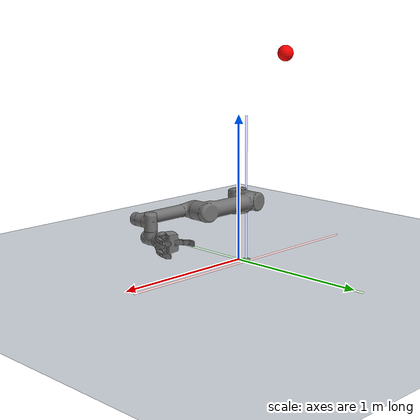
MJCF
<!--Link  MuJoCo modeling: http://www.mujoco.org/book/modeling.html-->

<mujoco model="ur5gripper">
    <compiler angle="radian"
              inertiafromgeom="true"
              texturedir="textures/"
              meshdir="mesh/visual/"/>
    <option timestep="2e-3"
            iterations="10"
            tolerance="1e-10"
            impratio="20"
            gravity="0 0 -1.81" />
    <size njmax="600" nconmax="150" nstack="300000"/>

    <default>
        <site rgba="0.8 0.6 0.7 0.3" type="ellipsoid" group="3"/>
        <geom contype='1' conaffinity='1' condim='4'  margin="1e-3" solref=".01 1" solimp=".99 .99 .01" />
        <joint armature="0.01" damping=".1"/>
        <default class="UR5">
            <joint damping='65'/>
        </default>
        <default class="UR5e">
            <joint damping='45'/>
        </default>
        <default class="GRIPPER">
            <joint damping='5'/>
        </default>
    </default>

    <visual>
        <map fogstart="3" fogend="5" znear="0.05"/>
        <quality shadowsize="2048"/>
        <scale framelength="0.1"
               framewidth="0.005"
               contactwidth="0.1"
               contactheight="0.005"
               forcewidth="0.01"
               />
    </visual>

    <!--Assets-->
    <asset>
        <!--Meshes-->
        <mesh name="base"           file="base.stl"     />
        <mesh name="shoulder"       file="shoulder.stl" />
        <mesh name="upperarm"       file="upperarm.stl" />
        <mesh name="forearm"        file="forearm.stl"  />
        <mesh name="wrist1"         file="wrist1.stl"   />
        <mesh name="wrist2"         file="wrist2.stl"   />
        <mesh name="wrist3"         file="wrist3.stl"   />
        <mesh name="gripperpalm"    file="palm.STL"     />
        <!-- gripper finger -->
        <mesh name="link_0"         file="link_0.STL"   />
        <mesh name="link_1"         file="link_1.STL"   />
        <mesh name="link_2"         file="link_2.STL"   />
        <mesh name="link_3"         file="link_3.STL"   />
        <!--Textures-->
        <texture name="ur5_tex"     type="2d"       builtin="flat" height="32" width="32" rgb1="0.45 0.45 0.45" />
        <texture name="gripper_tex" type="2d"       builtin="flat" height="32" width="32" rgb1="0.45 0.45 0.45" rgb2="0 0 0"/>
        <texture name="bench_tex"   type="2d"       builtin="flat" height="32" width="32" rgb1="0.7 0.7 0.7" />
        <texture name="sky_tex"     type="skybox"   builtin="gradient" width="100" height="100" rgb1="1 1 1" rgb2="0.3 0.3 0.8" />
        <texture name="texgeom"     type="cube"     builtin="flat" mark="cross" width="127" height="1278" rgb1="0.8 0.6 0.4" rgb2="0.8 0.6 0.4" markrgb="1 1 1" random="0.01" />
        <texture name="floor_tex"   type="2d"        builtin="checker" rgb1=".2 .3 .4" rgb2=".1 .2 .3" width="100" height="100" />
        <texture name="wood"        type="cube"     file="wood2.png"/>
        <texture name="metal"        type="cube"     file="metal2.png"/>
        <!--Materials-->
        <material name="ur5_mat"        texture="ur5_tex"   shininess="0.9" specular="0.75" reflectance="0.3"/>
        <material name="gripper_mat"    texture="gripper_tex"   shininess="0.9" specular="0.75" reflectance="0.4"/>
        <material name='floor_mat'      texture="floor_tex"  shininess="0.8" texrepeat="10 10" specular="0.7"  reflectance="0.5" />
        <material name='geom'           texture="texgeom"   texuniform="true" />
        <material name="bench_mat"      texture="metal"   shininess="0.1" specular="0.5" reflectance="0.2"/>
        <material name="tablecube"      texture="wood" rgba=".8 .8 .8 1"/>

        <material name="table_mat" specular="0" shininess="0.5" reflectance="0" rgba="0.93 0.93 0.93 1"></material>
        <material name="block_mat" specular="0" shininess="0.5" reflectance="0" rgba="0.2 0.2 0.2 1"></material>
        <material name="puck_mat" specular="0" shininess="0.5" reflectance="0" rgba="0.2 0.2 0.2 1"></material>

    </asset>

    <equality>
    <!-- contrl the end-effector using mocap body, cartesion control -->
        <weld body1="robot0:mocap" body2="gripperpalm" solimp="0.9 0.95 0.001" solref="0.02 1"></weld>
    </equality>

    <!--Contacts-->
    <contact>
        <exclude body1="gripperpalm" body2="gripperfinger_1_link_1"/>
		<exclude body1="gripperpalm" body2="gripperfinger_2_link_1"/>
		<exclude body1="gripperpalm" body2="gripperfinger_middle_link_1"/>
        <exclude body1="box_link" body2="base_link"/>
		<exclude body1="base_link" body2="shoulder_link"/>
		<exclude body1="shoulder_link" body2="upper_arm_link"/>
        <exclude body1="upper_arm_link" body2="forearm_link"/>
		<exclude body1="forearm_link" body2="wrist_1_link"/>
		<exclude body1="wrist_1_link" body2="wrist_2_link"/>
        <exclude body1="wrist_2_link" body2="wrist_3_link"/>
        <exclude body1="wrist_3_link" body2="gripperpalm"/>
        <exclude body1="ee_link" body2="wrist_3_link"/>
        <exclude body1="ee_link" body2="gripperpalm"/>
    </contact>

    <!--MODEL DESCRIPTION-->
    <worldbody>
        <!-- the coordination of the end-effector: x, y, z and box -->
        <body mocap="true" name="robot0:mocap" pos="0 0 0">
            <geom conaffinity="0" contype="0" pos="0 0.07 0" rgba="0 0.5 0 0.7" size="0.02 0.02 0.02" type="box"></geom>
            <geom conaffinity="0" contype="0" pos="0 0.07 0" rgba="1 0 0 0.1" size="1 0.005 0.005" type="box"></geom>
            <geom conaffinity="0" contype="0" pos="0 0.07 0" rgba="0 1 0 0.1" size="0.005 1 0.005" type="box"></geom>
            <geom conaffinity="0" contype="0" pos="0 0.07 0" rgba="0 0 1 0.1" size="0.005 0.005 1" type="box"></geom>
        </body>
        <!--Lighting parameters-->
        <light name="light3" mode="targetbody" target="box_link" directional="true" pos="1 1 3" />
        <!--Camera parameters-->
        <camera name="main1" mode="fixed" target="gripperpalm" pos="2 2 2.7" axisangle="2 2 -2 1"/>
        <!--Floor Property-->
        <geom name='floor' material="floor_mat" pos='0 0 0' size='2.5 2.5 0.1'  type='plane' />

		<body name="robot0:external_camera_body_0" pos="0 0 0">
			<!--material="table_mat"-->
			<camera name="fixed_1" pos="1. -1.4 0.8" quat="1 1 0 0"/>
		</body>

		<body name="robot0:external_camera_top" pos="0 0 0">
			<camera name="top" pos="1.2 0. 2.5" quat="1 0 0 0"/>
		</body>

		<body name="robot0:external_camera_top_wide" pos="0 0 0">
			<camera name="top_w" pos="2.8 -1.3 1.3" euler="1.3 1.0 0.2"/>
		</body>

        <!--Robot UR5-->
        <body name="box_link" pos="0 0 0.435">
            <!-- ur5 -->
            <body name="base_link" pos="0.2869 0.2641 0">
                <inertial pos="0 0 0" quat="0.5 0.5 -0.5 0.5" mass="4" diaginertia="0.0072 0.00443333 0.00443333" />
                <geom type="mesh"  mesh="base" material="ur5_mat"/>
                <joint armature="0.0001" axis="1 0 0" damping="1e+11" name="robot0:slide0" pos="0 0 0" type="slide"></joint>
		        <joint armature="0.0001" axis="0 1 0" damping="1e+11" name="robot0:slide1" pos="0 0 0" type="slide"></joint>
		        <joint armature="0.0001" axis="0 0 1" damping="1e+11" name="robot0:slide2" pos="0 0 0" type="slide"></joint>
                <body name="shoulder_link" pos="0 0 0.089159">
                    <inertial pos="0 0 0" mass="3.7" diaginertia="0.0102675 0.0102675 0.00666" />
                    <joint name="shoulder_pan_joint" class="UR5" pos="0 0 0" axis="0 0 1" limited="true" range="-3.14159 3.14159" />
                    <geom type="mesh"  mesh="shoulder" material="ur5_mat"/>
                    <body name="upper_arm_link" pos="0 0.13585 0" quat="0.707107 0 0.707107 0">
                        <inertial pos="0 0 0.28" mass="8.393" diaginertia="0.226891 0.226891 0.0151074" />
                        <joint name="shoulder_lift_joint" class="UR5" pos="0 0 0" axis="0 1 0" limited="true" range="-3.14159 0" /> <!--Range= -3.14159 3.14159-->
                        <geom type="mesh"  mesh="upperarm" material="ur5_mat"/>
                        <body name="forearm_link" pos="0 -0.1197 0.425">
                            <inertial pos="0 0 0.25" mass="2.275" diaginertia="0.0494433 0.0494433 0.004095" />
                            <joint name="elbow_joint" class="UR5" pos="0 0 0" axis="0 1 0" limited="true" range="-3.14159 3.14159" />
                            <geom type="mesh"  mesh="forearm" material="ur5_mat"/>
                            <body name="wrist_1_link" pos="0 0 0.39225" quat="0.707107 0 0.707107 0">
                                <inertial pos="0 0 0" quat="0.5 0.5 -0.5 0.5" mass="1.219" diaginertia="0.21942 0.111173 0.111173" />
                                <joint name="wrist_1_joint" class="UR5e" pos="0 0 0" axis="0 1 0" limited="true" range="-3.14159 3.14159" />
                                <geom type="mesh"  mesh="wrist1" material="ur5_mat"/>
                                <body name="wrist_2_link" pos="0 0.093 0">
                                    <inertial pos="0 0 0" quat="0.5 0.5 -0.5 0.5" mass="1.219" diaginertia="0.21942 0.111173 0.111173" />
                                    <joint name="wrist_2_joint" class="UR5e" pos="0 0 0" axis="0 0 1" limited="true" range="-3.14159 3.14159" />
                                    <geom type="mesh"  mesh="wrist2" material="ur5_mat"/>
                                    <body name="wrist_3_link" pos="0 0 0.09465">
                                        <inertial pos="0 0 0" quat="0.5 0.5 -0.5 0.5" mass="0.1879" diaginertia="0.033822 0.0171365 0.0171365" />
                                        <joint name="wrist_3_joint" class="UR5e" pos="0 0 0" axis="0 1 0" limited="true" range="-3.14159 3.14159" />
                                        <geom type="mesh"  mesh="wrist3" material="ur5_mat"/>
                                        <body name="ee_link" pos="0 0.0823 0" quat="0.707107 0 0 0.707107">
                                            <inertial pos="-0.01 0 0" mass="0.001" diaginertia="1.66667e-08 1.66667e-08 1.66667e-08" />
                                            <geom size="0.005 0.005 0.005" pos="-0.01 0 0" type="box" />
                                        </body>
                                        <!--GRIPPER-->
                                        <body name="tool0" pos="0 0.0823 0" quat="0.707107 -0.707107 0 0">
                                            <inertial pos="0 0.0823 0" quat="0.707107 -0.707107 0 0" mass="0" diaginertia="0 0 0" />
                                            <body name="gripperpalm" pos="0 0 0.0423" quat="0.707107 0.707107 0 0">
                                                <site name="gripperpalm" pos="0 0.05 0" size="0.035 0.0055 0.035"/>
                                                <inertial pos="0 0 0" mass="1.3" diaginertia="0.0035 0.0035 0.0035" />
                                                <geom name="gripperpalm" type="mesh"  mesh="gripperpalm" material="gripper_mat"/>
                                                <!--FINGER 1-->
                                                <body name="gripperfinger_1_link_0" pos="-0.0455 0.0214 0.036" quat="-2.59838e-06 0.706825 0.707388 2.59631e-06">
                                                    <inertial pos="-0.01 0 0" quat="0.5 0.5 0.5 0.5" mass="0.1" diaginertia="2.5e-05 2.5e-05 1.8e-05" />
                                                    <joint name="gripperpalm_finger_1_joint" class="GRIPPER" pos="0 0 0" axis="0 1 0" limited="true" range="-0.2967 0.2967" />
                                                    <geom name="f1_l0" type="mesh" material="gripper_mat" mesh="link_0" />
                                                    <body name="gripperfinger_1_link_1" pos="0 0 0" quat="0.501642 0 0 -0.865075">
                                                        <site name="gripperfinger_1_polp_1" pos="-0.005 0.035 0" size=".006 .014 .014"/>
                                                        <inertial pos="0.00053 0.03218 0" quat="0.00544471 0.00542787 0.707078 0.707093" mass="0.047" diaginertia="6.43594e-05 6.06192e-05 4.97928e-06" />
                                                        <joint name="gripperfinger_1_joint_1" class="GRIPPER" pos="0 0 0" axis="0 0 1" limited="true" range="0 1.2217" />
                                                        <geom name="f1_l1" pos="0 0.05717 0" quat="0.707105 0 0 0.707108" type="mesh" material="gripper_mat" mesh="link_1" />
                                                        <body name="gripperfinger_1_link_2" pos="0 0.05715 0">
                                                            <site name="gripperfinger_1_polp_2" pos="-0.006 0.02 0" size=".006 .014 .014"/>
                                                            <inertial pos="0.00048 0.02167 0.00018" quat="0.00523005 0.00665272 0.709882 0.70427" mass="0.03284" diaginertia="2.24866e-05 1.98645e-05 3.47368e-06" />
                                                            <joint name="gripperfinger_1_joint_2" class="GRIPPER" pos="0 0 0" axis="0 0 1" limited="true" range="0 1.5708" />
                                                            <geom name="f1_l2" pos="0 0.0381 0.0075" quat="0.707105 0 0 0.707108" type="mesh" material="gripper_mat" mesh="link_2" />
                                                            <body name="gripperfinger_1_link_3" pos="0 0.039 0" quat="0.501642 0 0 0.865075">
                                                                <site name="gripperfinger_1_polp_3" pos="0.025 0.006 0" size=".014 .006 .014"/>
                                                                <inertial pos="0.01626 0.00049 0.0002" quat="0.520969 0.517877 0.481643 0.477927" mass="0.03354" diaginertia="1.43512e-05 1.26412e-05 2.98016e-06" />
                                                                <joint name="gripperfinger_1_joint_3" class="GRIPPER" pos="0 0 0" axis="0 0 1" limited="true" range="-0.6632 1.0471" />
                                                                <geom name="f1_l3" type="mesh" material="gripper_mat" mesh="link_3" />
                                                            </body>
                                                        </body>
                                                    </body>
                                                </body>
                                                <!--FINGER 2-->
                                                <body name="gripperfinger_2_link_0" pos="-0.0455 0.0214 -0.036" quat="-2.59838e-06 0.706825 0.707388 2.59631e-06">
                                                    <inertial pos="-0.01 0 0" quat="0.5 0.5 0.5 0.5" mass="0.1" diaginertia="2.5e-05 2.5e-05 1.8e-05" />
                                                    <joint name="gripperpalm_finger_2_joint" class="GRIPPER" pos="0 0 0" axis="0 1 0" limited="true" range="-0.2967 0.2967" />
                                                    <geom name="f2_l0" type="mesh" material="gripper_mat" mesh="link_0" />
                                                    <body name="gripperfinger_2_link_1" pos="0 0 0" quat="0.501642 0 0 -0.865075">
                                                        <site name="gripperfinger_2_polp_1" pos="-0.005 0.035 0" size=".006 .014 .014"/>
                                                        <inertial pos="0.00053 0.03218 0" quat="0.00544471 0.00542787 0.707078 0.707093" mass="0.047" diaginertia="6.43594e-05 6.06192e-05 4.97928e-06" />
                                                        <joint name="gripperfinger_2_joint_1" class="GRIPPER" pos="0 0 0" axis="0 0 1" limited="true" range="0 1.2217" />
                                                        <geom name="f2_l1" pos="0 0.05717 0" quat="0.707105 0 0 0.707108" type="mesh" material="gripper_mat" mesh="link_1" />
                                                        <body name="gripperfinger_2_link_2" pos="0 0.05715 0">
                                                            <site name="gripperfinger_2_polp_2" pos="-0.006 0.02 0" size=".006 .014 .014"/>
                                                            <inertial pos="0.00048 0.02167 0.00018" quat="0.00523005 0.00665272 0.709882 0.70427" mass="0.03284" diaginertia="2.24866e-05 1.98645e-05 3.47368e-06" />
                                                            <joint name="gripperfinger_2_joint_2" class="GRIPPER" pos="0 0 0" axis="0 0 1" limited="true" range="0 1.5708" />
                                                            <geom name="f2_l2" pos="0 0.0381 0.0075" quat="0.707105 0 0 0.707108" type="mesh" material="gripper_mat" mesh="link_2" />
                                                            <body name="gripperfinger_2_link_3" pos="0 0.039 0" quat="0.501642 0 0 0.865075">
                                                                <site name="gripperfinger_2_polp_3" pos="0.025 0.006 0" size=".014 .006 .014"/>
                                                                <inertial pos="0.01626 0.00049 0.0002" quat="0.520969 0.517877 0.481643 0.477927" mass="0.03354" diaginertia="1.43512e-05 1.26412e-05 2.98016e-06" />
                                                                <joint name="gripperfinger_2_joint_3" class="GRIPPER" pos="0 0 0" axis="0 0 1" limited="true" range="-0.6632 1.0471" />
                                                                <geom name="f2_l3" type="mesh" material="gripper_mat" mesh="link_3" />
                                                            </body>
                                                        </body>
                                                    </body>
                                                </body>
                                                <!--MIDDLE FINGER-->
                                                <body name="gripperfinger_middle_link_0" pos="0.0455 0.0214 0" quat="0.707388 0 0 0.706825">
                                                    <inertial pos="-0.01 0 0" quat="0.5 0.5 0.5 0.5" mass="0.1" diaginertia="2.5e-05 2.5e-05 1.8e-05" />
                                                    <joint name="gripperpalm_finger_middle_joint" class="GRIPPER" pos="0 0 0" axis="0 1 0"  limited="true" range="-1e-3 1e-3"/> <!--RANGE CAMBIATO (In realtà aggiunto, non c'era ??) A MANO DA ME PER LA STABILITA DEL POLLICE-->
                                                    <geom name="f3_l0" type="mesh" material="gripper_mat" mesh="link_0" />
                                                    <body name="gripperfinger_middle_link_1" pos="0 0 0" quat="0.501642 0 0 -0.865075">
                                                        <site name="gripperfinger_middle_polp_1" pos="-0.005 0.035 0" size=".006 .014 .014"/>
                                                        <inertial pos="0.00053 0.03218 0" quat="0.00544471 0.00542787 0.707078 0.707093" mass="0.047" diaginertia="6.43594e-05 6.06192e-05 4.97928e-06" />
                                                        <joint name="gripperfinger_middle_joint_1" class="GRIPPER" pos="0 0 0" axis="0 0 1" limited="true" range="0 1.2217" />
                                                        <geom name="f3_l1" pos="0 0.05717 0" quat="0.707105 0 0 0.707108" type="mesh" material="gripper_mat" mesh="link_1" />
                                                        <body name="gripperfinger_middle_link_2" pos="0 0.05715 0">
                                                            <site name="gripperfinger_middle_polp_2" pos="-0.006 0.02 0" size=".006 .014 .014"/>
                                                            <inertial pos="0.00048 0.02167 0.00018" quat="0.00523005 0.00665272 0.709882 0.70427" mass="0.03284" diaginertia="2.24866e-05 1.98645e-05 3.47368e-06" />
                                                            <joint name="gripperfinger_middle_joint_2" class="GRIPPER" pos="0 0 0" axis="0 0 1" limited="true" range="0 1.5708" />
                                                            <geom name="f3_l2" pos="0 0.0381 0.0075" quat="0.707105 0 0 0.707108" type="mesh" material="gripper_mat" mesh="link_2" />
                                                            <body name="gripperfinger_middle_link_3" pos="0 0.039 0" quat="0.501642 0 0 0.865075">
                                                                <site name="gripperfinger_middle_polp_3" pos="0.025 0.006 0" size=".014 .006 .014"/>
                                                                <inertial pos="0.01626 0.00049 0.0002" quat="0.520969 0.517877 0.481643 0.477927" mass="0.03354" diaginertia="1.43512e-05 1.26412e-05 2.98016e-06" />
                                                                <joint name="gripperfinger_middle_joint_3" class="GRIPPER" pos="0 0 0" axis="0 0 1" limited="true" range="-0.6632 1.0471" />
                                                                <geom name="f3_l3" type="mesh" material="gripper_mat" mesh="link_3" />
                                                            </body>
                                                        </body>
                                                    </body>
                                                </body>
                                            </body>
                                        </body>
                                    </body>
                                </body>
                            </body>
                        </body>
                    </body>
                </body>
                <body name="base" pos="0 0 0" quat="1.7949e-09 0 0 -1">
                    <inertial pos="0 0 0" quat="1.7949e-09 0 0 -1" mass="0" diaginertia="0 0 0" />
                </body>
            </body>
        </body>
		<geom name="floor0" pos="0.8 0.75 0" size="0.85 0.7 1" type="plane" condim="3" material="floor_mat"></geom>

        <!-- Dynamic Target -->
		<body name="object" pos="0.9 1.2 1.5">
            <joint name="object:joint" type="free" damping="0.01"></joint>
            <!-- catch -->

            <!-- keep up; for contact detection -->
            <geom name="object" size="0.04 0.04 0.04" type="sphere" condim="1" rgba="1 0 0 1" mass="0.1" friction="0 0 0" solimp="1 1 0"  solref="0.1 0.03"/>

			<site name="object" pos="0 0 0" size="0.04 0.04 0.04" rgba="1 0 0 1" type="sphere"/>
		</body>

        <!-- ======= DESTINATION ======= -->
        <site name="target" pos="0.5 0.5 0.6" size="0.02 0.02 0.02" rgba="0 1 0 0.125" />

    </worldbody>

    <tendon>
		<!--Middlefinger tendons-->
		<fixed name="middle12_cpl" range="0 1">
			<joint joint="gripperfinger_middle_joint_1"  coef="1"/>
			<joint joint="gripperfinger_middle_joint_2"  coef="-1.5"/>
		</fixed>
		<fixed name="middle23_cpl" range="0 1">
			<joint joint="gripperfinger_middle_joint_2"  coef="1"/>
			<joint joint="gripperfinger_middle_joint_3"  coef="-3.5"/>
		</fixed>

		<!--finger2 tendons-->
        <fixed name="finger2_12_cpl" range="0 1">
			<joint joint="gripperfinger_2_joint_1"  coef="1"/>
			<joint joint="gripperfinger_2_joint_2"  coef="-1.5"/>
		</fixed>
		<fixed name="finger2_23_cpl" range="0 1">
			<joint joint="gripperfinger_2_joint_2"  coef="1"/>
			<joint joint="gripperfinger_2_joint_3"  coef="-3.5"/>
		</fixed>

		<!--Finger1 tendons-->
        <fixed name="finger1_12_cpl" range="0 1">
			<joint joint="gripperfinger_1_joint_1"  coef="1"/>
			<joint joint="gripperfinger_1_joint_2"  coef="-1.5"/>
		</fixed>
		<fixed name="finger1_23_cpl" range="0 1">
			<joint joint="gripperfinger_1_joint_2"  coef="1"/>
			<joint joint="gripperfinger_1_joint_3"  coef="-3.5"/>
		</fixed>
	</tendon>

    <equality>
		<!-- GRIPPER Couplings -->
		<tendon name="middle12_cpl" 	tendon1="middle12_cpl"/>
		<tendon name="middle23_cpl" 	tendon1="middle23_cpl"/>

        <tendon name="finger2_12_cpl" 	tendon1="finger2_12_cpl"/>
		<tendon name="finger2_23_cpl" 	tendon1="finger2_23_cpl"/>

        <tendon name="finger1_12_cpl" 	tendon1="finger1_12_cpl"/>
		<tendon name="finger1_23_cpl" 	tendon1="finger1_23_cpl"/>

		<!-- SCISSOR Coupling -->
		<joint name="finger_12_scissor" joint1="gripperpalm_finger_2_joint" joint2="gripperpalm_finger_1_joint" polycoef="0 -1 0 0 0"/>
	</equality>

    <!--ACTUATORS-->
    <actuator>
        <!--UR5-->
        <!-- position control mode -->
        <position name='shoulder_pan' ctrllimited="true" ctrlrange="-3.14159 3.14159" joint='shoulder_pan_joint' kp="500"/>
        <position name='shoulder_lift' ctrllimited="true" ctrlrange="-3.14159 3.14159" joint='shoulder_lift_joint' kp="500"/>
        <position name='forearm' ctrllimited="true" ctrlrange="-3.14159 3.14159" joint='elbow_joint' kp="500"/>
        <position name='wrist_1' ctrllimited="true" ctrlrange="-3.14159 3.14159" joint='wrist_1_joint' kp="100"/>
        <position name='wrist_2' ctrllimited="true" ctrlrange="-3.14159 3.14159" joint='wrist_2_joint' kp="100"/>
        <position name='wrist_3' ctrllimited="true" ctrlrange="-3.14159 3.14159" joint='wrist_3_joint' kp="100"/>

        <!-- force control mode -->

        <!-- velocity control mode -->

        <!--Gripper-->
        <!-- position control mode -->

        <!-- force control mode -->

        <!-- gripper joint -->
        <position ctrllimited="true" ctrlrange="-0.16 0.25" joint="gripperpalm_finger_1_joint" kp="20" name="gripper_palm_finger_1_joint" forcelimited="true" forcerange="-500 500"/>
        <position ctrllimited="true" ctrlrange="0 3.1416" joint="gripperfinger_1_joint_1" kp="2" name="gripper_finger_1_joint_1" forcelimited="true" forcerange="-20 20"/>
        <position ctrllimited="true" ctrlrange="0 3.1416" joint="gripperfinger_1_joint_2" kp="2" name="gripper_finger_1_joint_2" forcelimited="true" forcerange="-20 20"/>
        <position ctrllimited="true" ctrlrange="0 3.1416" joint="gripperfinger_1_joint_3" kp="2" name="gripper_finger_1_joint_3" forcelimited="true" forcerange="-20 20"/>
        <position ctrllimited="true" ctrlrange="-0.16 0.25" joint="gripperpalm_finger_2_joint" kp="20" name="gripper_palm_finger_2_joint" forcelimited="true" forcerange="-500 500"/>
        <position ctrllimited="true" ctrlrange="0 3.1416" joint="gripperfinger_2_joint_1" kp="2" name="gripper_finger_2_joint_1" forcelimited="true" forcerange="-20 20"/>
        <position ctrllimited="true" ctrlrange="0 3.1416" joint="gripperfinger_2_joint_2" kp="2" name="gripper_finger_2_joint_2" forcelimited="true" forcerange="-20 20"/>
        <position ctrllimited="true" ctrlrange="0 3.1416" joint="gripperfinger_2_joint_3" kp="2" name="gripper_finger_2_joint_3" forcelimited="true" forcerange="-20 20"/>
        <position ctrllimited="true" ctrlrange="0 3.1416" joint="gripperfinger_middle_joint_1" kp="2" name="gripper_finger_middle_joint_1" forcelimited="true" forcerange="-20 20"/>
        <position ctrllimited="true" ctrlrange="0 3.1416" joint="gripperfinger_middle_joint_2" kp="2" name="gripper_finger_middle_joint_2" forcelimited="true" forcerange="-20 20"/>
        <position ctrllimited="true" ctrlrange="0 3.1416" joint="gripperfinger_middle_joint_3" kp="2" name="gripper_finger_middle_joint_3" forcelimited="true" forcerange="-20 20"/>

    </actuator>

    <sensor>
        <touch name="gripperpalm_frc" 		site="gripperpalm"/>

        <touch name="finger_1_polp_1_frc"	site="gripperfinger_1_polp_1"/>
    	<touch name="finger_1_polp_2_frc" 	site="gripperfinger_1_polp_2"/>
        <touch name="finger_1_polp_3_frc" 	site="gripperfinger_1_polp_3"/>

        <touch name="finger_2_link_1_frc" 	site="gripperfinger_2_polp_1"/>
        <touch name="finger_2_link_2_frc" 	site="gripperfinger_2_polp_2"/>
        <touch name="finger_2_link_3_frc" 	site="gripperfinger_2_polp_3"/>

        <touch name="finger_middle_link_1_frc" 	site="gripperfinger_middle_polp_1"/>
        <touch name="finger_middle_link_2_frc" 	site="gripperfinger_middle_polp_2"/>
        <touch name="finger_middle_link_3_frc" 	site="gripperfinger_middle_polp_3"/>
    </sensor>

</mujoco>
